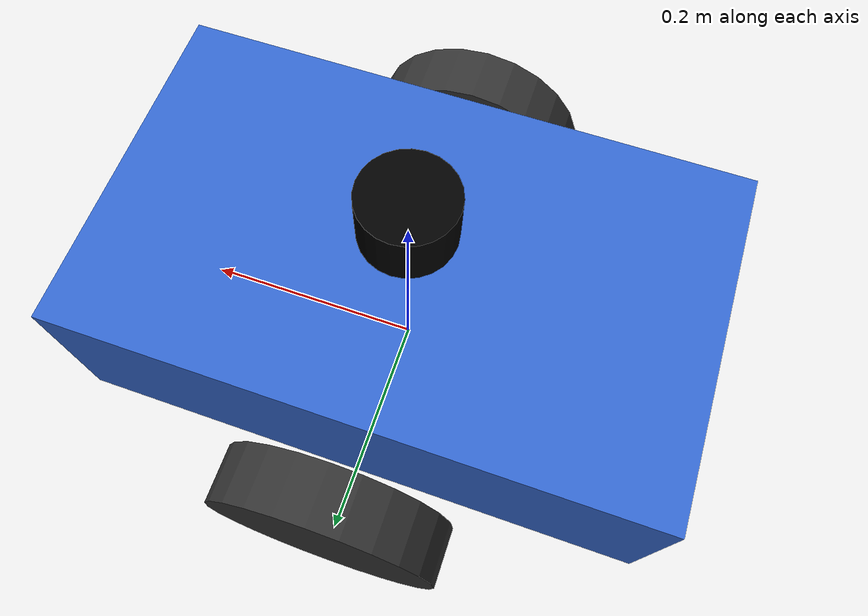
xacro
<?xml version="1.0"?>
<robot name="simandplay_robot" xmlns:xacro="http://www.ros.org/wiki/xacro">

  <!-- Colors -->
  <material name="blue"><color rgba="0.2 0.4 0.8 1.0"/></material>
  <material name="dark_grey"><color rgba="0.2 0.2 0.2 1.0"/></material>
  <material name="grey"><color rgba="0.5 0.5 0.5 1.0"/></material>
  <material name="black"><color rgba="0.0 0.0 0.0 1.0"/></material>

  <!-- Base footprint (virtual) -->
  <link name="base_footprint"/>

  <joint name="base_footprint_joint" type="fixed">
    <parent link="base_footprint"/>
    <child link="base_link"/>
    <origin xyz="0 0 0.1" rpy="0 0 0"/>
  </joint>

  <!-- Base link -->
  <link name="base_link">
    <visual>
      <geometry><box size="0.5 0.3 0.15"/></geometry>
      <material name="blue"/>
    </visual>
    <collision>
      <geometry><box size="0.5 0.3 0.15"/></geometry>
    </collision>
    <inertial>
      <mass value="5.0"/>
      <inertia ixx="0.05" ixy="0" ixz="0" iyy="0.1" iyz="0" izz="0.1"/>
    </inertial>
  </link>

  <!-- Left wheel -->
  <link name="left_wheel">
    <visual>
      <geometry><cylinder radius="0.1" length="0.05"/></geometry>
      <material name="dark_grey"/>
    </visual>
    <collision>
      <geometry><cylinder radius="0.1" length="0.05"/></geometry>
    </collision>
    <inertial>
      <mass value="0.5"/>
      <inertia ixx="0.001" ixy="0" ixz="0" iyy="0.001" iyz="0" izz="0.002"/>
    </inertial>
  </link>

  <joint name="left_wheel_joint" type="continuous">
    <parent link="base_link"/>
    <child link="left_wheel"/>
    <origin xyz="0.0 0.2 -0.05" rpy="-1.5707 0 0"/>
    <axis xyz="0 0 1"/>
  </joint>

  <!-- Right wheel -->
  <link name="right_wheel">
    <visual>
      <geometry><cylinder radius="0.1" length="0.05"/></geometry>
      <material name="dark_grey"/>
    </visual>
    <collision>
      <geometry><cylinder radius="0.1" length="0.05"/></geometry>
    </collision>
    <inertial>
      <mass value="0.5"/>
      <inertia ixx="0.001" ixy="0" ixz="0" iyy="0.001" iyz="0" izz="0.002"/>
    </inertial>
  </link>

  <joint name="right_wheel_joint" type="continuous">
    <parent link="base_link"/>
    <child link="right_wheel"/>
    <origin xyz="0.0 -0.2 -0.05" rpy="-1.5707 0 0"/>
    <axis xyz="0 0 1"/>
  </joint>

  <!-- Front caster -->
  <link name="front_caster">
    <visual>
      <geometry><sphere radius="0.05"/></geometry>
      <material name="grey"/>
    </visual>
    <collision>
      <geometry><sphere radius="0.05"/></geometry>
    </collision>
    <inertial>
      <mass value="0.1"/>
      <inertia ixx="0.0001" ixy="0" ixz="0" iyy="0.0001" iyz="0" izz="0.0001"/>
    </inertial>
  </link>

  <joint name="front_caster_joint" type="fixed">
    <parent link="base_link"/>
    <child link="front_caster"/>
    <origin xyz="0.2 0 -0.1" rpy="0 0 0"/>
  </joint>

  <!-- Lidar link -->
  <link name="lidar_link">
    <visual>
      <geometry><cylinder radius="0.04" length="0.05"/></geometry>
      <material name="black"/>
    </visual>
    <collision>
      <geometry><cylinder radius="0.04" length="0.05"/></geometry>
    </collision>
    <inertial>
      <mass value="0.1"/>
      <inertia ixx="0.00001" ixy="0" ixz="0" iyy="0.00001" iyz="0" izz="0.00001"/>
    </inertial>
  </link>

  <joint name="lidar_joint" type="fixed">
    <parent link="base_link"/>
    <child link="lidar_link"/>
    <origin xyz="0 0 0.125" rpy="0 0 0"/>
  </joint>

  <!-- Ignition Gazebo Plugins -->

  <!-- Diff Drive -->
  <gazebo>
    <plugin filename="libignition-gazebo-diff-drive-system.so"
            name="ignition::gazebo::systems::DiffDrive">
      <left_joint>left_wheel_joint</left_joint>
      <right_joint>right_wheel_joint</right_joint>
      <wheel_separation>0.4</wheel_separation>
      <wheel_radius>0.1</wheel_radius>
      <odom_publish_frequency>20</odom_publish_frequency>
      <topic>cmd_vel</topic>
      <odom_topic>odom</odom_topic>
      <tf_topic>tf</tf_topic>
      <frame_id>odom</frame_id>
      <child_frame_id>base_footprint</child_frame_id>
    </plugin>
  </gazebo>

  <!-- 2D Lidar (CPU-based, no GPU needed) -->
  <gazebo reference="lidar_link">
    <sensor name="lidar" type="gpu_lidar">
      <topic>scan</topic>
      <update_rate>10</update_rate>
      <gz_frame_id>lidar_link</gz_frame_id>
      <lidar>
        <scan>
          <horizontal>
            <samples>360</samples>
            <resolution>1</resolution>
            <min_angle>-3.14159</min_angle>
            <max_angle>3.14159</max_angle>
          </horizontal>
        </scan>
        <range>
          <min>0.12</min>
          <max>12.0</max>
          <resolution>0.01</resolution>
        </range>
        <noise>
          <type>gaussian</type>
          <mean>0</mean>
          <stddev>0.005</stddev>
        </noise>
      </lidar>
      <always_on>1</always_on>
      <visualize>false</visualize>
    </sensor>
  </gazebo>

  <!-- Friction for caster (low friction so it slides freely) -->
  <gazebo reference="front_caster">
    <mu1>0.01</mu1>
    <mu2>0.01</mu2>
  </gazebo>

</robot>
